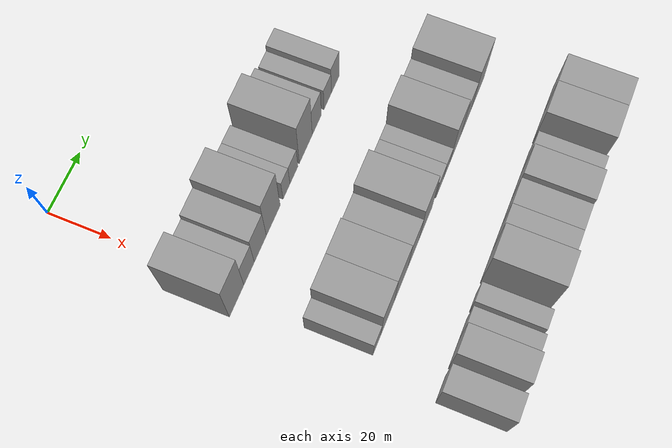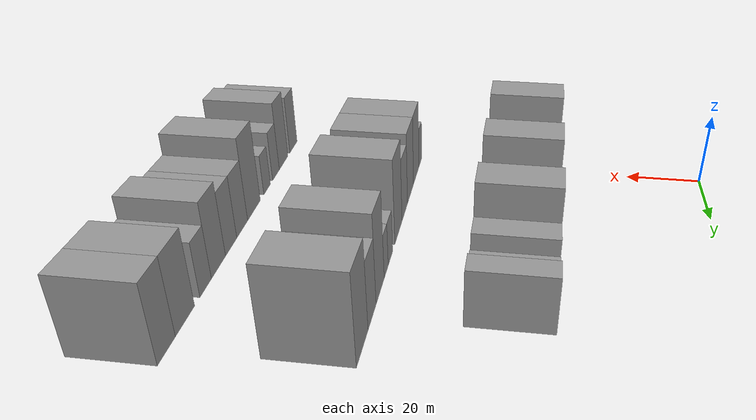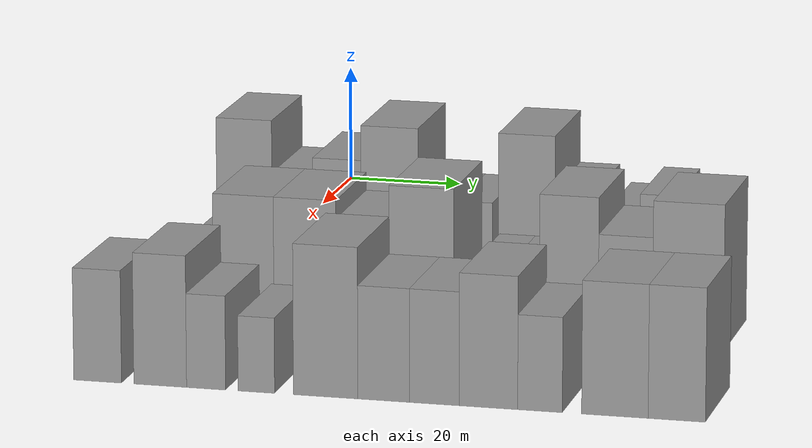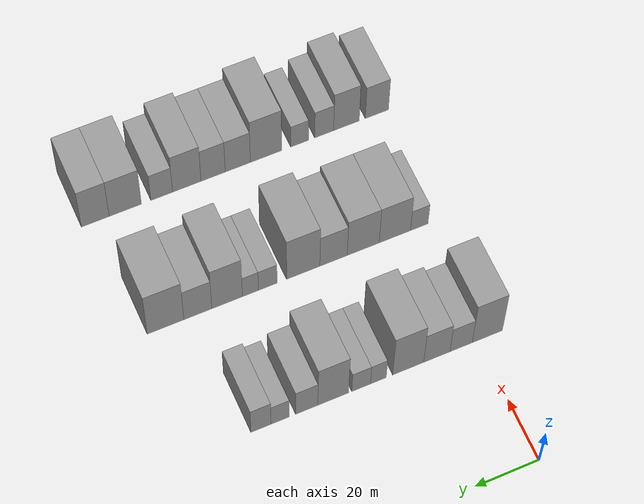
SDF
<sdf version="1.6">
 <world name="default">
  <model name="building_43">
   <static>1</static>
   <pose>50.0000 -3.1910 0 0.000000 0.000000 0.000000</pose>
   <link name="link">
    <pose>0 0 12.00 0 0 0</pose>
    <collision name="collision"><geometry><box><size>20.0000 9.6660 24.0000</size></box></geometry></collision>
    <visual name="visual">
     <cast_shadows>0</cast_shadows>
     <geometry><box><size>20.0000 9.6660 24.0000</size></box></geometry>
     <material>
      <script>
       <uri>model://grey_wall/materials/scripts</uri>
       <uri>model://grey_wall/materials/textures</uri>
       <name>vrc/grey_wall</name>
      </script>
     </material>
    </visual>
   </link>
  </model>
  <model name="building_44">
   <static>1</static>
   <pose>50.0000 5.1931 0 0.000000 0.000000 0.000000</pose>
   <link name="link">
    <pose>0 0 7.50 0 0 0</pose>
    <collision name="collision"><geometry><box><size>20.0000 7.1022 15.0000</size></box></geometry></collision>
    <visual name="visual">
     <cast_shadows>0</cast_shadows>
     <geometry><box><size>20.0000 7.1022 15.0000</size></box></geometry>
     <material>
      <script>
       <uri>model://grey_wall/materials/scripts</uri>
       <uri>model://grey_wall/materials/textures</uri>
       <name>vrc/grey_wall</name>
      </script>
     </material>
    </visual>
   </link>
  </model>
  <model name="building_45">
   <static>1</static>
   <pose>50.0000 12.9163 0 0.000000 0.000000 0.000000</pose>
   <link name="link">
    <pose>0 0 9.00 0 0 0</pose>
    <collision name="collision"><geometry><box><size>20.0000 8.3441 18.0000</size></box></geometry></collision>
    <visual name="visual">
     <cast_shadows>0</cast_shadows>
     <geometry><box><size>20.0000 8.3441 18.0000</size></box></geometry>
     <material>
      <script>
       <uri>model://grey_wall/materials/scripts</uri>
       <uri>model://grey_wall/materials/textures</uri>
       <name>vrc/grey_wall</name>
      </script>
     </material>
    </visual>
   </link>
  </model>
  <model name="building_46">
   <static>1</static>
   <pose>50.0000 21.9917 0 0.000000 0.000000 0.000000</pose>
   <link name="link">
    <pose>0 0 12.00 0 0 0</pose>
    <collision name="collision"><geometry><box><size>20.0000 9.8067 24.0000</size></box></geometry></collision>
    <visual name="visual">
     <cast_shadows>0</cast_shadows>
     <geometry><box><size>20.0000 9.8067 24.0000</size></box></geometry>
     <material>
      <script>
       <uri>model://grey_wall/materials/scripts</uri>
       <uri>model://grey_wall/materials/textures</uri>
       <name>vrc/grey_wall</name>
      </script>
     </material>
    </visual>
   </link>
  </model>
  <model name="building_47">
   <static>1</static>
   <pose>50.0000 31.3637 0 0.000000 0.000000 0.000000</pose>
   <link name="link">
    <pose>0 0 6.00 0 0 0</pose>
    <collision name="collision"><geometry><box><size>20.0000 4.9374 12.0000</size></box></geometry></collision>
    <visual name="visual">
     <cast_shadows>0</cast_shadows>
     <geometry><box><size>20.0000 4.9374 12.0000</size></box></geometry>
     <material>
      <script>
       <uri>model://grey_wall/materials/scripts</uri>
       <uri>model://grey_wall/materials/textures</uri>
       <name>vrc/grey_wall</name>
      </script>
     </material>
    </visual>
   </link>
  </model>
  <model name="building_48">
   <static>1</static>
   <pose>50.0000 36.7672 0 0.000000 0.000000 0.000000</pose>
   <link name="link">
    <pose>0 0 6.00 0 0 0</pose>
    <collision name="collision"><geometry><box><size>20.0000 5.8695 12.0000</size></box></geometry></collision>
    <visual name="visual">
     <cast_shadows>0</cast_shadows>
     <geometry><box><size>20.0000 5.8695 12.0000</size></box></geometry>
     <material>
      <script>
       <uri>model://grey_wall/materials/scripts</uri>
       <uri>model://grey_wall/materials/textures</uri>
       <name>vrc/grey_wall</name>
      </script>
     </material>
    </visual>
   </link>
  </model>
  <model name="building_49">
   <static>1</static>
   <pose>50.0000 45.5210 0 0.000000 0.000000 0.000000</pose>
   <link name="link">
    <pose>0 0 12.00 0 0 0</pose>
    <collision name="collision"><geometry><box><size>20.0000 9.6381 24.0000</size></box></geometry></collision>
    <visual name="visual">
     <cast_shadows>0</cast_shadows>
     <geometry><box><size>20.0000 9.6381 24.0000</size></box></geometry>
     <material>
      <script>
       <uri>model://grey_wall/materials/scripts</uri>
       <uri>model://grey_wall/materials/textures</uri>
       <name>vrc/grey_wall</name>
      </script>
     </material>
    </visual>
   </link>
  </model>
  <model name="building_50">
   <static>1</static>
   <pose>50.0000 53.7683 0 0.000000 0.000000 0.000000</pose>
   <link name="link">
    <pose>0 0 7.50 0 0 0</pose>
    <collision name="collision"><geometry><box><size>20.0000 6.8565 15.0000</size></box></geometry></collision>
    <visual name="visual">
     <cast_shadows>0</cast_shadows>
     <geometry><box><size>20.0000 6.8565 15.0000</size></box></geometry>
     <material>
      <script>
       <uri>model://grey_wall/materials/scripts</uri>
       <uri>model://grey_wall/materials/textures</uri>
       <name>vrc/grey_wall</name>
      </script>
     </material>
    </visual>
   </link>
  </model>
  <model name="building_51">
   <static>1</static>
   <pose>50.0000 61.9982 0 0.000000 0.000000 0.000000</pose>
   <link name="link">
    <pose>0 0 6.00 0 0 0</pose>
    <collision name="collision"><geometry><box><size>20.0000 5.6034 12.0000</size></box></geometry></collision>
    <visual name="visual">
     <cast_shadows>0</cast_shadows>
     <geometry><box><size>20.0000 5.6034 12.0000</size></box></geometry>
     <material>
      <script>
       <uri>model://grey_wall/materials/scripts</uri>
       <uri>model://grey_wall/materials/textures</uri>
       <name>vrc/grey_wall</name>
      </script>
     </material>
    </visual>
   </link>
  </model>
  <model name="building_52">
   <static>1</static>
   <pose>50.0000 67.8972 0 0.000000 0.000000 0.000000</pose>
   <link name="link">
    <pose>0 0 7.50 0 0 0</pose>
    <collision name="collision"><geometry><box><size>20.0000 6.1945 15.0000</size></box></geometry></collision>
    <visual name="visual">
     <cast_shadows>0</cast_shadows>
     <geometry><box><size>20.0000 6.1945 15.0000</size></box></geometry>
     <material>
      <script>
       <uri>model://grey_wall/materials/scripts</uri>
       <uri>model://grey_wall/materials/textures</uri>
       <name>vrc/grey_wall</name>
      </script>
     </material>
    </visual>
   </link>
  </model>
  <model name="building_127">
   <static>1</static>
   <pose>90.0000 -0.2088 0 0.000000 0.000000 0.000000</pose>
   <link name="link">
    <pose>0 0 6.00 0 0 0</pose>
    <collision name="collision"><geometry><box><size>20.0000 5.7023 12.0000</size></box></geometry></collision>
    <visual name="visual">
     <cast_shadows>0</cast_shadows>
     <geometry><box><size>20.0000 5.7023 12.0000</size></box></geometry>
     <material>
      <script>
       <uri>model://grey_wall/materials/scripts</uri>
       <uri>model://grey_wall/materials/textures</uri>
       <name>vrc/grey_wall</name>
      </script>
     </material>
    </visual>
   </link>
  </model>
  <model name="building_128">
   <static>1</static>
   <pose>90.0000 7.7156 0 0.000000 0.000000 0.000000</pose>
   <link name="link">
    <pose>0 0 10.50 0 0 0</pose>
    <collision name="collision"><geometry><box><size>20.0000 10.1465 21.0000</size></box></geometry></collision>
    <visual name="visual">
     <cast_shadows>0</cast_shadows>
     <geometry><box><size>20.0000 10.1465 21.0000</size></box></geometry>
     <material>
      <script>
       <uri>model://grey_wall/materials/scripts</uri>
       <uri>model://grey_wall/materials/textures</uri>
       <name>vrc/grey_wall</name>
      </script>
     </material>
    </visual>
   </link>
  </model>
  <model name="building_129">
   <static>1</static>
   <pose>90.0000 17.9669 0 0.000000 0.000000 0.000000</pose>
   <link name="link">
    <pose>0 0 10.50 0 0 0</pose>
    <collision name="collision"><geometry><box><size>20.0000 10.3562 21.0000</size></box></geometry></collision>
    <visual name="visual">
     <cast_shadows>0</cast_shadows>
     <geometry><box><size>20.0000 10.3562 21.0000</size></box></geometry>
     <material>
      <script>
       <uri>model://grey_wall/materials/scripts</uri>
       <uri>model://grey_wall/materials/textures</uri>
       <name>vrc/grey_wall</name>
      </script>
     </material>
    </visual>
   </link>
  </model>
  <model name="building_130">
   <static>1</static>
   <pose>90.0000 27.5365 0 0.000000 0.000000 0.000000</pose>
   <link name="link">
    <pose>0 0 9.00 0 0 0</pose>
    <collision name="collision"><geometry><box><size>20.0000 8.7829 18.0000</size></box></geometry></collision>
    <visual name="visual">
     <cast_shadows>0</cast_shadows>
     <geometry><box><size>20.0000 8.7829 18.0000</size></box></geometry>
     <material>
      <script>
       <uri>model://grey_wall/materials/scripts</uri>
       <uri>model://grey_wall/materials/textures</uri>
       <name>vrc/grey_wall</name>
      </script>
     </material>
    </visual>
   </link>
  </model>
  <model name="building_131">
   <static>1</static>
   <pose>90.0000 37.2476 0 0.000000 0.000000 0.000000</pose>
   <link name="link">
    <pose>0 0 12.00 0 0 0</pose>
    <collision name="collision"><geometry><box><size>20.0000 10.6394 24.0000</size></box></geometry></collision>
    <visual name="visual">
     <cast_shadows>0</cast_shadows>
     <geometry><box><size>20.0000 10.6394 24.0000</size></box></geometry>
     <material>
      <script>
       <uri>model://grey_wall/materials/scripts</uri>
       <uri>model://grey_wall/materials/textures</uri>
       <name>vrc/grey_wall</name>
      </script>
     </material>
    </visual>
   </link>
  </model>
  <model name="building_132">
   <static>1</static>
   <pose>90.0000 48.5385 0 0.000000 0.000000 0.000000</pose>
   <link name="link">
    <pose>0 0 6.00 0 0 0</pose>
    <collision name="collision"><geometry><box><size>20.0000 5.9423 12.0000</size></box></geometry></collision>
    <visual name="visual">
     <cast_shadows>0</cast_shadows>
     <geometry><box><size>20.0000 5.9423 12.0000</size></box></geometry>
     <material>
      <script>
       <uri>model://grey_wall/materials/scripts</uri>
       <uri>model://grey_wall/materials/textures</uri>
       <name>vrc/grey_wall</name>
      </script>
     </material>
    </visual>
   </link>
  </model>
  <model name="building_133">
   <static>1</static>
   <pose>90.0000 54.0481 0 0.000000 0.000000 0.000000</pose>
   <link name="link">
    <pose>0 0 6.00 0 0 0</pose>
    <collision name="collision"><geometry><box><size>20.0000 5.0769 12.0000</size></box></geometry></collision>
    <visual name="visual">
     <cast_shadows>0</cast_shadows>
     <geometry><box><size>20.0000 5.0769 12.0000</size></box></geometry>
     <material>
      <script>
       <uri>model://grey_wall/materials/scripts</uri>
       <uri>model://grey_wall/materials/textures</uri>
       <name>vrc/grey_wall</name>
      </script>
     </material>
    </visual>
   </link>
  </model>
  <model name="building_134">
   <static>1</static>
   <pose>90.0000 61.3993 0 0.000000 0.000000 0.000000</pose>
   <link name="link">
    <pose>0 0 12.00 0 0 0</pose>
    <collision name="collision"><geometry><box><size>20.0000 9.6254 24.0000</size></box></geometry></collision>
    <visual name="visual">
     <cast_shadows>0</cast_shadows>
     <geometry><box><size>20.0000 9.6254 24.0000</size></box></geometry>
     <material>
      <script>
       <uri>model://grey_wall/materials/scripts</uri>
       <uri>model://grey_wall/materials/textures</uri>
       <name>vrc/grey_wall</name>
      </script>
     </material>
    </visual>
   </link>
  </model>
  <model name="building_135">
   <static>1</static>
   <pose>90.0000 70.6013 0 0.000000 0.000000 0.000000</pose>
   <link name="link">
    <pose>0 0 9.00 0 0 0</pose>
    <collision name="collision"><geometry><box><size>20.0000 8.7785 18.0000</size></box></geometry></collision>
    <visual name="visual">
     <cast_shadows>0</cast_shadows>
     <geometry><box><size>20.0000 8.7785 18.0000</size></box></geometry>
     <material>
      <script>
       <uri>model://grey_wall/materials/scripts</uri>
       <uri>model://grey_wall/materials/textures</uri>
       <name>vrc/grey_wall</name>
      </script>
     </material>
    </visual>
   </link>
  </model>
  <model name="building_136">
   <static>1</static>
   <pose>90.0000 80.7221 0 0.000000 0.000000 0.000000</pose>
   <link name="link">
    <pose>0 0 12.00 0 0 0</pose>
    <collision name="collision"><geometry><box><size>20.0000 11.4631 24.0000</size></box></geometry></collision>
    <visual name="visual">
     <cast_shadows>0</cast_shadows>
     <geometry><box><size>20.0000 11.4631 24.0000</size></box></geometry>
     <material>
      <script>
       <uri>model://grey_wall/materials/scripts</uri>
       <uri>model://grey_wall/materials/textures</uri>
       <name>vrc/grey_wall</name>
      </script>
     </material>
    </visual>
   </link>
  </model>
  <model name="building_210">
   <static>1</static>
   <pose>130.0000 -4.7286 0 0.000000 0.000000 0.000000</pose>
   <link name="link">
    <pose>0 0 9.00 0 0 0</pose>
    <collision name="collision"><geometry><box><size>20.0000 7.7306 18.0000</size></box></geometry></collision>
    <visual name="visual">
     <cast_shadows>0</cast_shadows>
     <geometry><box><size>20.0000 7.7306 18.0000</size></box></geometry>
     <material>
      <script>
       <uri>model://grey_wall/materials/scripts</uri>
       <uri>model://grey_wall/materials/textures</uri>
       <name>vrc/grey_wall</name>
      </script>
     </material>
    </visual>
   </link>
  </model>
  <model name="building_211">
   <static>1</static>
   <pose>130.0000 5.3848 0 0.000000 0.000000 0.000000</pose>
   <link name="link">
    <pose>0 0 10.50 0 0 0</pose>
    <collision name="collision"><geometry><box><size>20.0000 8.4962 21.0000</size></box></geometry></collision>
    <visual name="visual">
     <cast_shadows>0</cast_shadows>
     <geometry><box><size>20.0000 8.4962 21.0000</size></box></geometry>
     <material>
      <script>
       <uri>model://grey_wall/materials/scripts</uri>
       <uri>model://grey_wall/materials/textures</uri>
       <name>vrc/grey_wall</name>
      </script>
     </material>
    </visual>
   </link>
  </model>
  <model name="building_212">
   <static>1</static>
   <pose>130.0000 12.7706 0 0.000000 0.000000 0.000000</pose>
   <link name="link">
    <pose>0 0 7.50 0 0 0</pose>
    <collision name="collision"><geometry><box><size>20.0000 6.2754 15.0000</size></box></geometry></collision>
    <visual name="visual">
     <cast_shadows>0</cast_shadows>
     <geometry><box><size>20.0000 6.2754 15.0000</size></box></geometry>
     <material>
      <script>
       <uri>model://grey_wall/materials/scripts</uri>
       <uri>model://grey_wall/materials/textures</uri>
       <name>vrc/grey_wall</name>
      </script>
     </material>
    </visual>
   </link>
  </model>
  <model name="building_213">
   <static>1</static>
   <pose>130.0000 20.8236 0 0.000000 0.000000 0.000000</pose>
   <link name="link">
    <pose>0 0 6.00 0 0 0</pose>
    <collision name="collision"><geometry><box><size>20.0000 5.8306 12.0000</size></box></geometry></collision>
    <visual name="visual">
     <cast_shadows>0</cast_shadows>
     <geometry><box><size>20.0000 5.8306 12.0000</size></box></geometry>
     <material>
      <script>
       <uri>model://grey_wall/materials/scripts</uri>
       <uri>model://grey_wall/materials/textures</uri>
       <name>vrc/grey_wall</name>
      </script>
     </material>
    </visual>
   </link>
  </model>
  <model name="building_214">
   <static>1</static>
   <pose>130.0000 31.8542 0 0.000000 0.000000 0.000000</pose>
   <link name="link">
    <pose>0 0 12.00 0 0 0</pose>
    <collision name="collision"><geometry><box><size>20.0000 10.2306 24.0000</size></box></geometry></collision>
    <visual name="visual">
     <cast_shadows>0</cast_shadows>
     <geometry><box><size>20.0000 10.2306 24.0000</size></box></geometry>
     <material>
      <script>
       <uri>model://grey_wall/materials/scripts</uri>
       <uri>model://grey_wall/materials/textures</uri>
       <name>vrc/grey_wall</name>
      </script>
     </material>
    </visual>
   </link>
  </model>
  <model name="building_215">
   <static>1</static>
   <pose>130.0000 41.0463 0 0.000000 0.000000 0.000000</pose>
   <link name="link">
    <pose>0 0 9.00 0 0 0</pose>
    <collision name="collision"><geometry><box><size>20.0000 8.1536 18.0000</size></box></geometry></collision>
    <visual name="visual">
     <cast_shadows>0</cast_shadows>
     <geometry><box><size>20.0000 8.1536 18.0000</size></box></geometry>
     <material>
      <script>
       <uri>model://grey_wall/materials/scripts</uri>
       <uri>model://grey_wall/materials/textures</uri>
       <name>vrc/grey_wall</name>
      </script>
     </material>
    </visual>
   </link>
  </model>
  <model name="building_216">
   <static>1</static>
   <pose>130.0000 49.0525 0 0.000000 0.000000 0.000000</pose>
   <link name="link">
    <pose>0 0 9.00 0 0 0</pose>
    <collision name="collision"><geometry><box><size>20.0000 7.8588 18.0000</size></box></geometry></collision>
    <visual name="visual">
     <cast_shadows>0</cast_shadows>
     <geometry><box><size>20.0000 7.8588 18.0000</size></box></geometry>
     <material>
      <script>
       <uri>model://grey_wall/materials/scripts</uri>
       <uri>model://grey_wall/materials/textures</uri>
       <name>vrc/grey_wall</name>
      </script>
     </material>
    </visual>
   </link>
  </model>
  <model name="building_217">
   <static>1</static>
   <pose>130.0000 57.5645 0 0.000000 0.000000 0.000000</pose>
   <link name="link">
    <pose>0 0 10.50 0 0 0</pose>
    <collision name="collision"><geometry><box><size>20.0000 9.1652 21.0000</size></box></geometry></collision>
    <visual name="visual">
     <cast_shadows>0</cast_shadows>
     <geometry><box><size>20.0000 9.1652 21.0000</size></box></geometry>
     <material>
      <script>
       <uri>model://grey_wall/materials/scripts</uri>
       <uri>model://grey_wall/materials/textures</uri>
       <name>vrc/grey_wall</name>
      </script>
     </material>
    </visual>
   </link>
  </model>
  <model name="building_218">
   <static>1</static>
   <pose>130.0000 65.6352 0 0.000000 0.000000 0.000000</pose>
   <link name="link">
    <pose>0 0 7.50 0 0 0</pose>
    <collision name="collision"><geometry><box><size>20.0000 6.9761 15.0000</size></box></geometry></collision>
    <visual name="visual">
     <cast_shadows>0</cast_shadows>
     <geometry><box><size>20.0000 6.9761 15.0000</size></box></geometry>
     <material>
      <script>
       <uri>model://grey_wall/materials/scripts</uri>
       <uri>model://grey_wall/materials/textures</uri>
       <name>vrc/grey_wall</name>
      </script>
     </material>
    </visual>
   </link>
  </model>
  <model name="building_219">
   <static>1</static>
   <pose>130.0000 77.2814 0 0.000000 0.000000 0.000000</pose>
   <link name="link">
    <pose>0 0 10.50 0 0 0</pose>
    <collision name="collision"><geometry><box><size>20.0000 10.3164 21.0000</size></box></geometry></collision>
    <visual name="visual">
     <cast_shadows>0</cast_shadows>
     <geometry><box><size>20.0000 10.3164 21.0000</size></box></geometry>
     <material>
      <script>
       <uri>model://grey_wall/materials/scripts</uri>
       <uri>model://grey_wall/materials/textures</uri>
       <name>vrc/grey_wall</name>
      </script>
     </material>
    </visual>
   </link>
  </model>
  <model name="building_220">
   <static>1</static>
   <pose>130.0000 86.8623 0 0.000000 0.000000 0.000000</pose>
   <link name="link">
    <pose>0 0 10.50 0 0 0</pose>
    <collision name="collision"><geometry><box><size>20.0000 8.8453 21.0000</size></box></geometry></collision>
    <visual name="visual">
     <cast_shadows>0</cast_shadows>
     <geometry><box><size>20.0000 8.8453 21.0000</size></box></geometry>
     <material>
      <script>
       <uri>model://grey_wall/materials/scripts</uri>
       <uri>model://grey_wall/materials/textures</uri>
       <name>vrc/grey_wall</name>
      </script>
     </material>
    </visual>
   </link>
  </model>
 </world>
</sdf>
